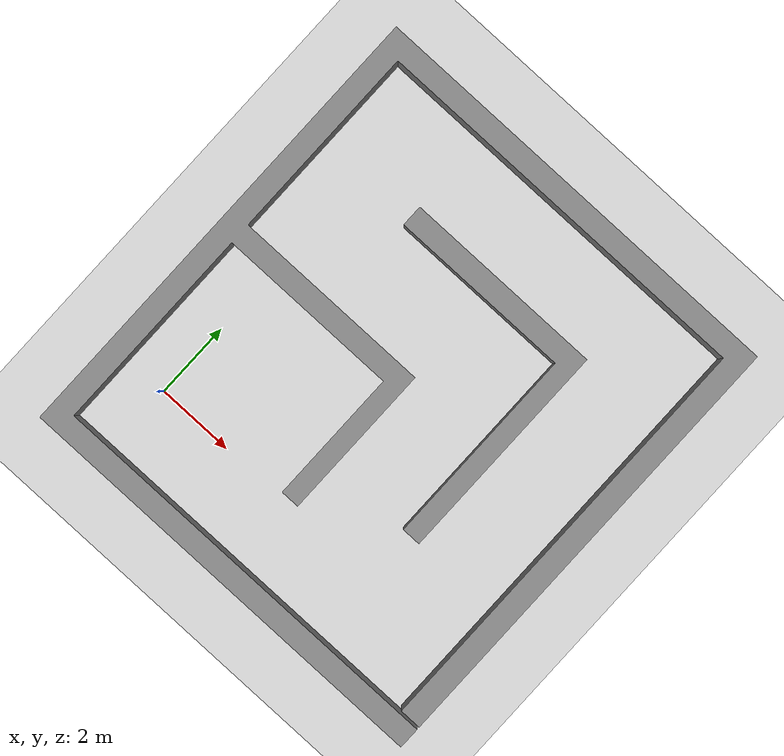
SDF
<?xml version="1.0" ?>
<sdf version="1.11">

  <world name="racetrack">
    <physics name='bullet' type='bullet'>
      <max_step_size>0.001</max_step_size>
      <real_time_factor>1</real_time_factor>
      <real_time_update_rate>1000</real_time_update_rate>
    </physics>
    <plugin name='gz::sim::systems::Physics' filename='gz-sim-physics-system'/>
    <plugin name='gz::sim::systems::Sensors' filename='gz-sim-sensors-system'>
      <render_engine>ogre2</render_engine>
    </plugin>
    <plugin name='gz::sim::systems::SceneBroadcaster' filename='gz-sim-scene-broadcaster-system'/>
    <plugin name='gz::sim::systems::UserCommands' filename='gz-sim-user-commands-system'/>
    <gravity>0 0 -9.8000000000000007</gravity>
    <magnetic_field>5.5644999999999998e-06 2.2875799999999999e-05 -4.2388400000000002e-05</magnetic_field>
    <atmosphere type='adiabatic'/>
    <scene>
      <ambient>0.400000006 0.400000006 0.400000006 1</ambient>
      <background>0.699999988 0.699999988 0.699999988 1</background>
      <shadows>true</shadows>
    </scene>

    <light type="directional" name="sun">
      <cast_shadows>true</cast_shadows>
      <pose>0 0 10 0 0 0</pose>
      <diffuse>0.8 0.8 0.8 1</diffuse>
      <specular>0.2 0.2 0.2 1</specular>
      <attenuation>
        <range>1000</range>
        <constant>0.9</constant>
        <linear>0.01</linear>
        <quadratic>0.001</quadratic>
      </attenuation>
      <direction>-0.5 0.1 -0.9</direction>
    </light>

    <model name="ground_plane">
      <static>true</static>
      <link name="link">
        <collision name="collision">
          <geometry>
            <plane>
              <normal>0 0 1</normal>
              <size>100 100</size>
            </plane>
          </geometry>
        </collision>

        <visual name="visual">
          <geometry>
            <plane>
              <normal>0 0 1</normal>
              <size>100 100</size>
            </plane>
          </geometry>
          <material>
            <ambient>0.8 0.8 0.8 1</ambient>
            <diffuse>0.8 0.8 0.8 1</diffuse>
            <specular>0.8 0.8 0.8 1</specular>
          </material>
        </visual>
      </link>
    </model>

    <model name="stl_racetrack">
		  <static>true</static>
      <pose>0.375 0 0 0 0 3.1416</pose>
		  <link name="link">
            <collision name="collision">
		      <geometry>
		        <mesh>
		          <uri>file:///home/lenovo/mrad_ws_2602_hotel/src/hotel_gazebo/worlds/Practice_track.stl</uri>
		          <scale>0.07 0.07 0.07</scale>
		        </mesh>
		      </geometry>
		    </collision>

		    <visual name="visual">
          <material>
            <ambient>0 0 0 1</ambient>
            <diffuse>0.5 0.5 0.5 1</diffuse>
            <specular>0.8 0.8 0.8 1</specular>
          </material>

		      <geometry>
		        <mesh>
		          <uri>file:///home/lenovo/mrad_ws_2602_hotel/src/hotel_gazebo/worlds/Practice_track.stl</uri>
		          <scale>0.07 0.07 0.07</scale>
		        </mesh>
		      </geometry>
		    </visual>
		  </link>
		</model>

  </world>
</sdf>
